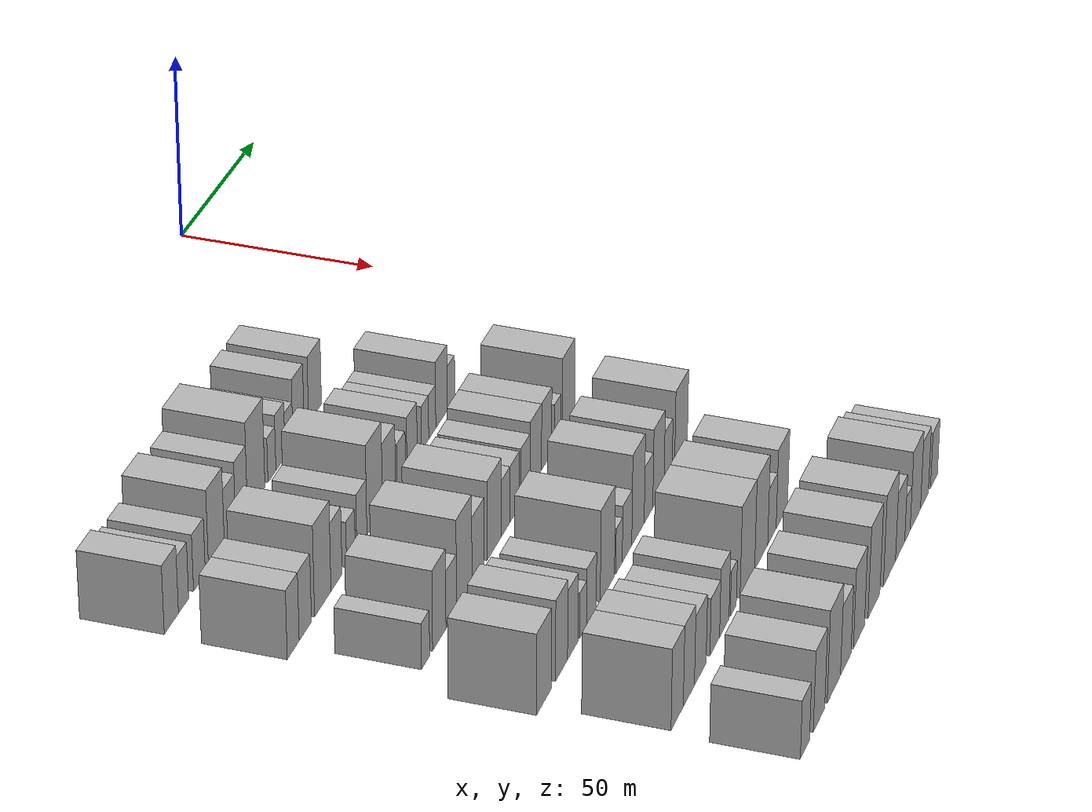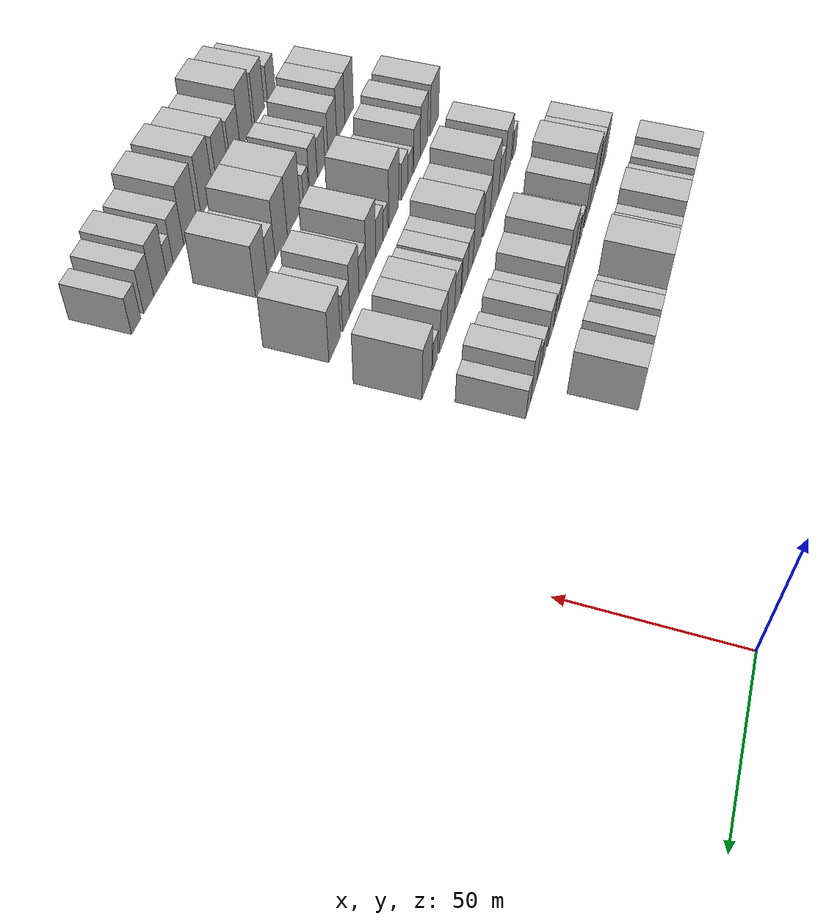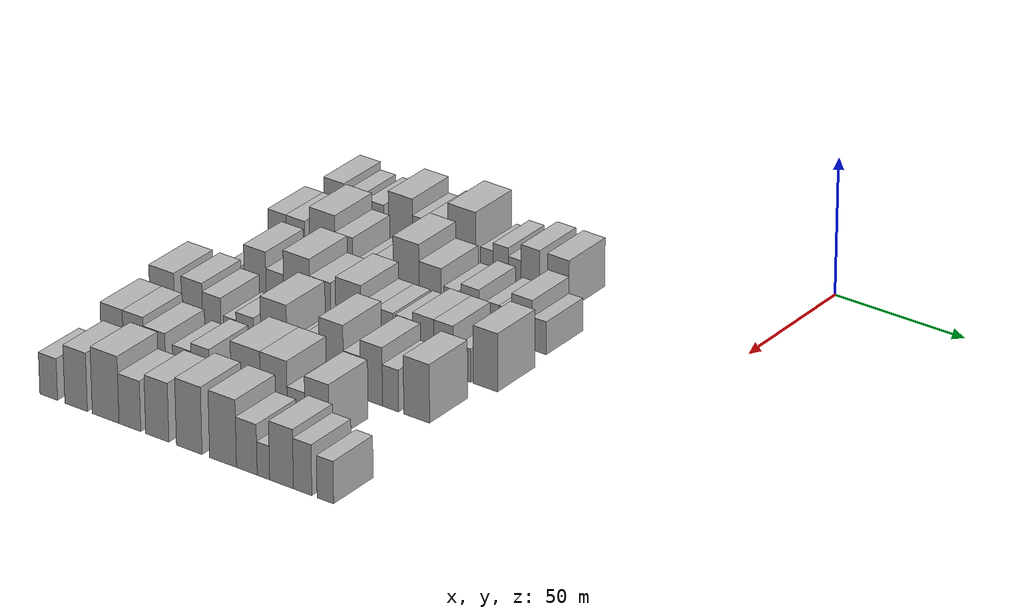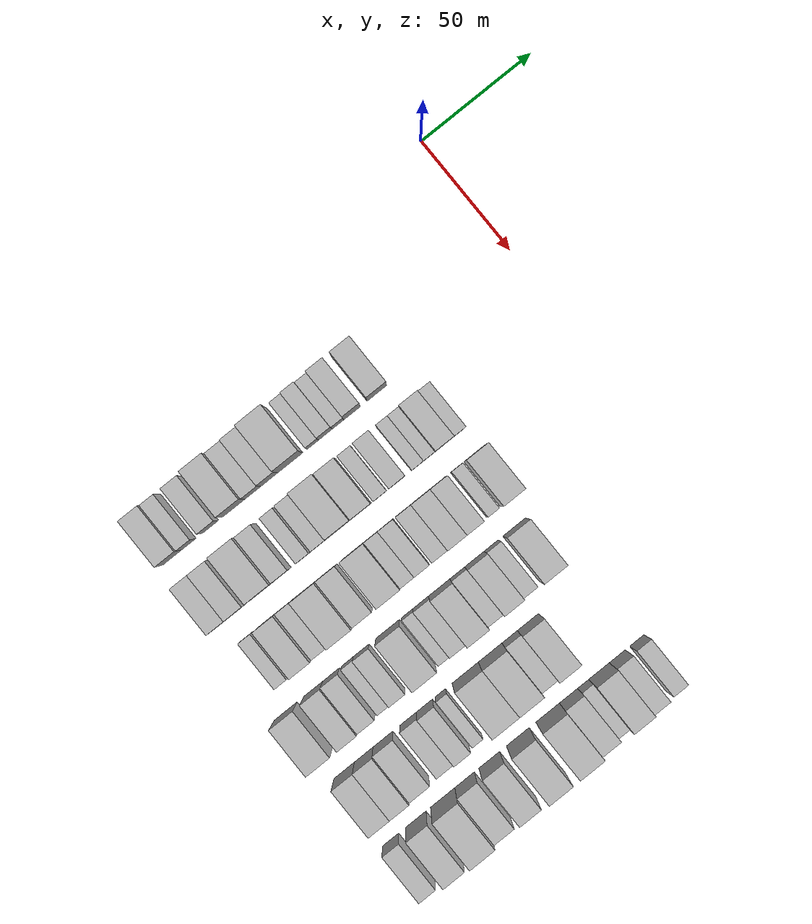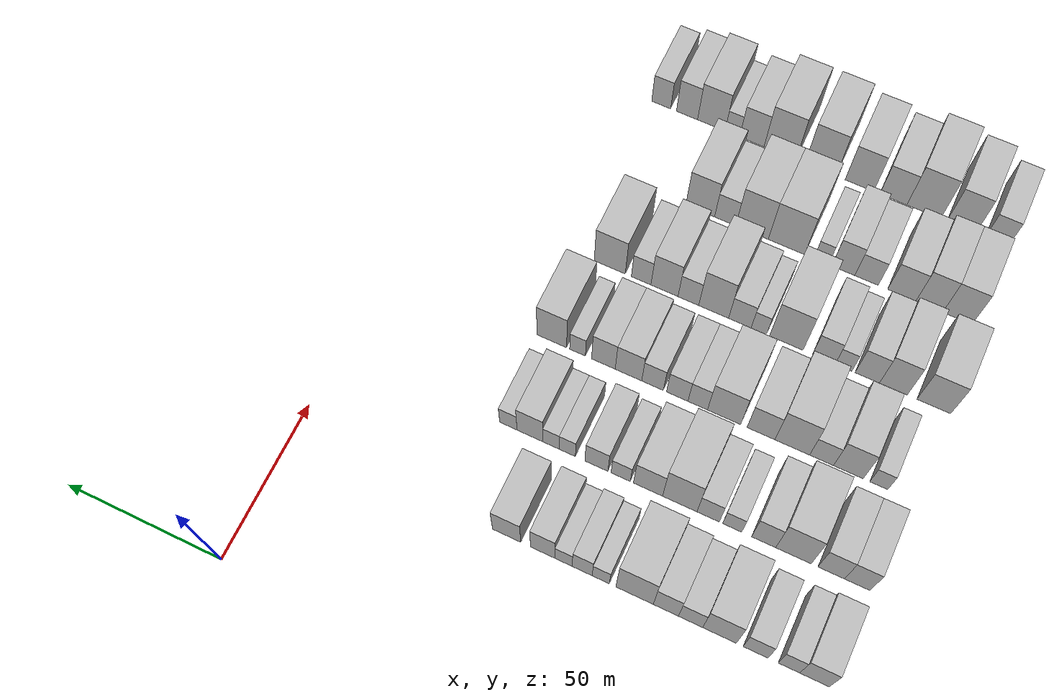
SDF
<sdf version="1.6">
 <world name="default">
  <model name="building_35">
   <static>1</static>
   <pose>50.0000 -160.4625 0 0.000000 0.000000 0.000000</pose>
   <link name="link">
    <pose>0 0 9.00 0 0 0</pose>
    <collision name="collision"><geometry><box><size>20.0000 8.5363 18.0000</size></box></geometry></collision>
    <visual name="visual">
     <cast_shadows>0</cast_shadows>
     <geometry><box><size>20.0000 8.5363 18.0000</size></box></geometry>
     <material>
      <script>
       <uri>model://HANNAS_wall/materials/scripts</uri>
       <uri>model://HANNAS_wall/materials/textures</uri>
       <name>vrc/HANNAS_wall</name>
      </script>
     </material>
    </visual>
   </link>
  </model>
  <model name="building_36">
   <static>1</static>
   <pose>50.0000 -153.0958 0 0.000000 0.000000 0.000000</pose>
   <link name="link">
    <pose>0 0 7.50 0 0 0</pose>
    <collision name="collision"><geometry><box><size>20.0000 6.1970 15.0000</size></box></geometry></collision>
    <visual name="visual">
     <cast_shadows>0</cast_shadows>
     <geometry><box><size>20.0000 6.1970 15.0000</size></box></geometry>
     <material>
      <script>
       <uri>model://HANNAS_wall/materials/scripts</uri>
       <uri>model://HANNAS_wall/materials/textures</uri>
       <name>vrc/HANNAS_wall</name>
      </script>
     </material>
    </visual>
   </link>
  </model>
  <model name="building_37">
   <static>1</static>
   <pose>50.0000 -143.3775 0 0.000000 0.000000 0.000000</pose>
   <link name="link">
    <pose>0 0 7.50 0 0 0</pose>
    <collision name="collision"><geometry><box><size>20.0000 7.2395 15.0000</size></box></geometry></collision>
    <visual name="visual">
     <cast_shadows>0</cast_shadows>
     <geometry><box><size>20.0000 7.2395 15.0000</size></box></geometry>
     <material>
      <script>
       <uri>model://HANNAS_wall/materials/scripts</uri>
       <uri>model://HANNAS_wall/materials/textures</uri>
       <name>vrc/HANNAS_wall</name>
      </script>
     </material>
    </visual>
   </link>
  </model>
  <model name="building_38">
   <static>1</static>
   <pose>50.0000 -132.7980 0 0.000000 0.000000 0.000000</pose>
   <link name="link">
    <pose>0 0 10.50 0 0 0</pose>
    <collision name="collision"><geometry><box><size>20.0000 9.9195 21.0000</size></box></geometry></collision>
    <visual name="visual">
     <cast_shadows>0</cast_shadows>
     <geometry><box><size>20.0000 9.9195 21.0000</size></box></geometry>
     <material>
      <script>
       <uri>model://HANNAS_wall/materials/scripts</uri>
       <uri>model://HANNAS_wall/materials/textures</uri>
       <name>vrc/HANNAS_wall</name>
      </script>
     </material>
    </visual>
   </link>
  </model>
  <model name="building_39">
   <static>1</static>
   <pose>50.0000 -124.2469 0 0.000000 0.000000 0.000000</pose>
   <link name="link">
    <pose>0 0 7.50 0 0 0</pose>
    <collision name="collision"><geometry><box><size>20.0000 7.1827 15.0000</size></box></geometry></collision>
    <visual name="visual">
     <cast_shadows>0</cast_shadows>
     <geometry><box><size>20.0000 7.1827 15.0000</size></box></geometry>
     <material>
      <script>
       <uri>model://HANNAS_wall/materials/scripts</uri>
       <uri>model://HANNAS_wall/materials/textures</uri>
       <name>vrc/HANNAS_wall</name>
      </script>
     </material>
    </visual>
   </link>
  </model>
  <model name="building_40">
   <static>1</static>
   <pose>50.0000 -116.9001 0 0.000000 0.000000 0.000000</pose>
   <link name="link">
    <pose>0 0 9.00 0 0 0</pose>
    <collision name="collision"><geometry><box><size>20.0000 7.5109 18.0000</size></box></geometry></collision>
    <visual name="visual">
     <cast_shadows>0</cast_shadows>
     <geometry><box><size>20.0000 7.5109 18.0000</size></box></geometry>
     <material>
      <script>
       <uri>model://HANNAS_wall/materials/scripts</uri>
       <uri>model://HANNAS_wall/materials/textures</uri>
       <name>vrc/HANNAS_wall</name>
      </script>
     </material>
    </visual>
   </link>
  </model>
  <model name="building_41">
   <static>1</static>
   <pose>50.0000 -107.5109 0 0.000000 0.000000 0.000000</pose>
   <link name="link">
    <pose>0 0 12.00 0 0 0</pose>
    <collision name="collision"><geometry><box><size>20.0000 11.2675 24.0000</size></box></geometry></collision>
    <visual name="visual">
     <cast_shadows>0</cast_shadows>
     <geometry><box><size>20.0000 11.2675 24.0000</size></box></geometry>
     <material>
      <script>
       <uri>model://HANNAS_wall/materials/scripts</uri>
       <uri>model://HANNAS_wall/materials/textures</uri>
       <name>vrc/HANNAS_wall</name>
      </script>
     </material>
    </visual>
   </link>
  </model>
  <model name="building_42">
   <static>1</static>
   <pose>50.0000 -97.2788 0 0.000000 0.000000 0.000000</pose>
   <link name="link">
    <pose>0 0 6.00 0 0 0</pose>
    <collision name="collision"><geometry><box><size>20.0000 5.1967 12.0000</size></box></geometry></collision>
    <visual name="visual">
     <cast_shadows>0</cast_shadows>
     <geometry><box><size>20.0000 5.1967 12.0000</size></box></geometry>
     <material>
      <script>
       <uri>model://HANNAS_wall/materials/scripts</uri>
       <uri>model://HANNAS_wall/materials/textures</uri>
       <name>vrc/HANNAS_wall</name>
      </script>
     </material>
    </visual>
   </link>
  </model>
  <model name="building_43">
   <static>1</static>
   <pose>50.0000 -91.6397 0 0.000000 0.000000 0.000000</pose>
   <link name="link">
    <pose>0 0 7.50 0 0 0</pose>
    <collision name="collision"><geometry><box><size>20.0000 6.0814 15.0000</size></box></geometry></collision>
    <visual name="visual">
     <cast_shadows>0</cast_shadows>
     <geometry><box><size>20.0000 6.0814 15.0000</size></box></geometry>
     <material>
      <script>
       <uri>model://HANNAS_wall/materials/scripts</uri>
       <uri>model://HANNAS_wall/materials/textures</uri>
       <name>vrc/HANNAS_wall</name>
      </script>
     </material>
    </visual>
   </link>
  </model>
  <model name="building_44">
   <static>1</static>
   <pose>50.0000 -85.9596 0 0.000000 0.000000 0.000000</pose>
   <link name="link">
    <pose>0 0 6.00 0 0 0</pose>
    <collision name="collision"><geometry><box><size>20.0000 5.2788 12.0000</size></box></geometry></collision>
    <visual name="visual">
     <cast_shadows>0</cast_shadows>
     <geometry><box><size>20.0000 5.2788 12.0000</size></box></geometry>
     <material>
      <script>
       <uri>model://HANNAS_wall/materials/scripts</uri>
       <uri>model://HANNAS_wall/materials/textures</uri>
       <name>vrc/HANNAS_wall</name>
      </script>
     </material>
    </visual>
   </link>
  </model>
  <model name="building_45">
   <static>1</static>
   <pose>50.0000 -79.5719 0 0.000000 0.000000 0.000000</pose>
   <link name="link">
    <pose>0 0 9.00 0 0 0</pose>
    <collision name="collision"><geometry><box><size>20.0000 7.4966 18.0000</size></box></geometry></collision>
    <visual name="visual">
     <cast_shadows>0</cast_shadows>
     <geometry><box><size>20.0000 7.4966 18.0000</size></box></geometry>
     <material>
      <script>
       <uri>model://HANNAS_wall/materials/scripts</uri>
       <uri>model://HANNAS_wall/materials/textures</uri>
       <name>vrc/HANNAS_wall</name>
      </script>
     </material>
    </visual>
   </link>
  </model>
  <model name="building_46">
   <static>1</static>
   <pose>50.0000 -68.4363 0 0.000000 0.000000 0.000000</pose>
   <link name="link">
    <pose>0 0 9.00 0 0 0</pose>
    <collision name="collision"><geometry><box><size>20.0000 8.7746 18.0000</size></box></geometry></collision>
    <visual name="visual">
     <cast_shadows>0</cast_shadows>
     <geometry><box><size>20.0000 8.7746 18.0000</size></box></geometry>
     <material>
      <script>
       <uri>model://HANNAS_wall/materials/scripts</uri>
       <uri>model://HANNAS_wall/materials/textures</uri>
       <name>vrc/HANNAS_wall</name>
      </script>
     </material>
    </visual>
   </link>
  </model>
  <model name="building_144">
   <static>1</static>
   <pose>79.0000 -161.6944 0 0.000000 0.000000 0.000000</pose>
   <link name="link">
    <pose>0 0 9.00 0 0 0</pose>
    <collision name="collision"><geometry><box><size>20.0000 7.4790 18.0000</size></box></geometry></collision>
    <visual name="visual">
     <cast_shadows>0</cast_shadows>
     <geometry><box><size>20.0000 7.4790 18.0000</size></box></geometry>
     <material>
      <script>
       <uri>model://HANNAS_wall/materials/scripts</uri>
       <uri>model://HANNAS_wall/materials/textures</uri>
       <name>vrc/HANNAS_wall</name>
      </script>
     </material>
    </visual>
   </link>
  </model>
  <model name="building_145">
   <static>1</static>
   <pose>79.0000 -154.0443 0 0.000000 0.000000 0.000000</pose>
   <link name="link">
    <pose>0 0 9.00 0 0 0</pose>
    <collision name="collision"><geometry><box><size>20.0000 7.8212 18.0000</size></box></geometry></collision>
    <visual name="visual">
     <cast_shadows>0</cast_shadows>
     <geometry><box><size>20.0000 7.8212 18.0000</size></box></geometry>
     <material>
      <script>
       <uri>model://HANNAS_wall/materials/scripts</uri>
       <uri>model://HANNAS_wall/materials/textures</uri>
       <name>vrc/HANNAS_wall</name>
      </script>
     </material>
    </visual>
   </link>
  </model>
  <model name="building_146">
   <static>1</static>
   <pose>79.0000 -142.8306 0 0.000000 0.000000 0.000000</pose>
   <link name="link">
    <pose>0 0 12.00 0 0 0</pose>
    <collision name="collision"><geometry><box><size>20.0000 10.6063 24.0000</size></box></geometry></collision>
    <visual name="visual">
     <cast_shadows>0</cast_shadows>
     <geometry><box><size>20.0000 10.6063 24.0000</size></box></geometry>
     <material>
      <script>
       <uri>model://HANNAS_wall/materials/scripts</uri>
       <uri>model://HANNAS_wall/materials/textures</uri>
       <name>vrc/HANNAS_wall</name>
      </script>
     </material>
    </visual>
   </link>
  </model>
  <model name="building_147">
   <static>1</static>
   <pose>79.0000 -133.9106 0 0.000000 0.000000 0.000000</pose>
   <link name="link">
    <pose>0 0 9.00 0 0 0</pose>
    <collision name="collision"><geometry><box><size>20.0000 7.2336 18.0000</size></box></geometry></collision>
    <visual name="visual">
     <cast_shadows>0</cast_shadows>
     <geometry><box><size>20.0000 7.2336 18.0000</size></box></geometry>
     <material>
      <script>
       <uri>model://HANNAS_wall/materials/scripts</uri>
       <uri>model://HANNAS_wall/materials/textures</uri>
       <name>vrc/HANNAS_wall</name>
      </script>
     </material>
    </visual>
   </link>
  </model>
  <model name="building_148">
   <static>1</static>
   <pose>79.0000 -124.4067 0 0.000000 0.000000 0.000000</pose>
   <link name="link">
    <pose>0 0 6.00 0 0 0</pose>
    <collision name="collision"><geometry><box><size>20.0000 5.7742 12.0000</size></box></geometry></collision>
    <visual name="visual">
     <cast_shadows>0</cast_shadows>
     <geometry><box><size>20.0000 5.7742 12.0000</size></box></geometry>
     <material>
      <script>
       <uri>model://HANNAS_wall/materials/scripts</uri>
       <uri>model://HANNAS_wall/materials/textures</uri>
       <name>vrc/HANNAS_wall</name>
      </script>
     </material>
    </visual>
   </link>
  </model>
  <model name="building_149">
   <static>1</static>
   <pose>79.0000 -117.1202 0 0.000000 0.000000 0.000000</pose>
   <link name="link">
    <pose>0 0 7.50 0 0 0</pose>
    <collision name="collision"><geometry><box><size>20.0000 6.7987 15.0000</size></box></geometry></collision>
    <visual name="visual">
     <cast_shadows>0</cast_shadows>
     <geometry><box><size>20.0000 6.7987 15.0000</size></box></geometry>
     <material>
      <script>
       <uri>model://HANNAS_wall/materials/scripts</uri>
       <uri>model://HANNAS_wall/materials/textures</uri>
       <name>vrc/HANNAS_wall</name>
      </script>
     </material>
    </visual>
   </link>
  </model>
  <model name="building_150">
   <static>1</static>
   <pose>79.0000 -108.4394 0 0.000000 0.000000 0.000000</pose>
   <link name="link">
    <pose>0 0 12.00 0 0 0</pose>
    <collision name="collision"><geometry><box><size>20.0000 10.5630 24.0000</size></box></geometry></collision>
    <visual name="visual">
     <cast_shadows>0</cast_shadows>
     <geometry><box><size>20.0000 10.5630 24.0000</size></box></geometry>
     <material>
      <script>
       <uri>model://HANNAS_wall/materials/scripts</uri>
       <uri>model://HANNAS_wall/materials/textures</uri>
       <name>vrc/HANNAS_wall</name>
      </script>
     </material>
    </visual>
   </link>
  </model>
  <model name="building_151">
   <static>1</static>
   <pose>79.0000 -98.6583 0 0.000000 0.000000 0.000000</pose>
   <link name="link">
    <pose>0 0 9.00 0 0 0</pose>
    <collision name="collision"><geometry><box><size>20.0000 8.9992 18.0000</size></box></geometry></collision>
    <visual name="visual">
     <cast_shadows>0</cast_shadows>
     <geometry><box><size>20.0000 8.9992 18.0000</size></box></geometry>
     <material>
      <script>
       <uri>model://HANNAS_wall/materials/scripts</uri>
       <uri>model://HANNAS_wall/materials/textures</uri>
       <name>vrc/HANNAS_wall</name>
      </script>
     </material>
    </visual>
   </link>
  </model>
  <model name="building_152">
   <static>1</static>
   <pose>79.0000 -90.1829 0 0.000000 0.000000 0.000000</pose>
   <link name="link">
    <pose>0 0 6.00 0 0 0</pose>
    <collision name="collision"><geometry><box><size>20.0000 5.9516 12.0000</size></box></geometry></collision>
    <visual name="visual">
     <cast_shadows>0</cast_shadows>
     <geometry><box><size>20.0000 5.9516 12.0000</size></box></geometry>
     <material>
      <script>
       <uri>model://HANNAS_wall/materials/scripts</uri>
       <uri>model://HANNAS_wall/materials/textures</uri>
       <name>vrc/HANNAS_wall</name>
      </script>
     </material>
    </visual>
   </link>
  </model>
  <model name="building_153">
   <static>1</static>
   <pose>79.0000 -82.6163 0 0.000000 0.000000 0.000000</pose>
   <link name="link">
    <pose>0 0 7.50 0 0 0</pose>
    <collision name="collision"><geometry><box><size>20.0000 7.1815 15.0000</size></box></geometry></collision>
    <visual name="visual">
     <cast_shadows>0</cast_shadows>
     <geometry><box><size>20.0000 7.1815 15.0000</size></box></geometry>
     <material>
      <script>
       <uri>model://HANNAS_wall/materials/scripts</uri>
       <uri>model://HANNAS_wall/materials/textures</uri>
       <name>vrc/HANNAS_wall</name>
      </script>
     </material>
    </visual>
   </link>
  </model>
  <model name="building_154">
   <static>1</static>
   <pose>79.0000 -73.4507 0 0.000000 0.000000 0.000000</pose>
   <link name="link">
    <pose>0 0 6.00 0 0 0</pose>
    <collision name="collision"><geometry><box><size>20.0000 5.1498 12.0000</size></box></geometry></collision>
    <visual name="visual">
     <cast_shadows>0</cast_shadows>
     <geometry><box><size>20.0000 5.1498 12.0000</size></box></geometry>
     <material>
      <script>
       <uri>model://HANNAS_wall/materials/scripts</uri>
       <uri>model://HANNAS_wall/materials/textures</uri>
       <name>vrc/HANNAS_wall</name>
      </script>
     </material>
    </visual>
   </link>
  </model>
  <model name="building_155">
   <static>1</static>
   <pose>79.0000 -68.3393 0 0.000000 0.000000 0.000000</pose>
   <link name="link">
    <pose>0 0 6.00 0 0 0</pose>
    <collision name="collision"><geometry><box><size>20.0000 5.0730 12.0000</size></box></geometry></collision>
    <visual name="visual">
     <cast_shadows>0</cast_shadows>
     <geometry><box><size>20.0000 5.0730 12.0000</size></box></geometry>
     <material>
      <script>
       <uri>model://HANNAS_wall/materials/scripts</uri>
       <uri>model://HANNAS_wall/materials/textures</uri>
       <name>vrc/HANNAS_wall</name>
      </script>
     </material>
    </visual>
   </link>
  </model>
  <model name="building_156">
   <static>1</static>
   <pose>79.0000 -61.6820 0 0.000000 0.000000 0.000000</pose>
   <link name="link">
    <pose>0 0 9.00 0 0 0</pose>
    <collision name="collision"><geometry><box><size>20.0000 8.2416 18.0000</size></box></geometry></collision>
    <visual name="visual">
     <cast_shadows>0</cast_shadows>
     <geometry><box><size>20.0000 8.2416 18.0000</size></box></geometry>
     <material>
      <script>
       <uri>model://HANNAS_wall/materials/scripts</uri>
       <uri>model://HANNAS_wall/materials/textures</uri>
       <name>vrc/HANNAS_wall</name>
      </script>
     </material>
    </visual>
   </link>
  </model>
  <model name="building_157">
   <static>1</static>
   <pose>79.0000 -54.7967 0 0.000000 0.000000 0.000000</pose>
   <link name="link">
    <pose>0 0 6.00 0 0 0</pose>
    <collision name="collision"><geometry><box><size>20.0000 5.5290 12.0000</size></box></geometry></collision>
    <visual name="visual">
     <cast_shadows>0</cast_shadows>
     <geometry><box><size>20.0000 5.5290 12.0000</size></box></geometry>
     <material>
      <script>
       <uri>model://HANNAS_wall/materials/scripts</uri>
       <uri>model://HANNAS_wall/materials/textures</uri>
       <name>vrc/HANNAS_wall</name>
      </script>
     </material>
    </visual>
   </link>
  </model>
  <model name="building_261">
   <static>1</static>
   <pose>108.0000 -157.2007 0 0.000000 0.000000 0.000000</pose>
   <link name="link">
    <pose>0 0 6.00 0 0 0</pose>
    <collision name="collision"><geometry><box><size>20.0000 5.4106 12.0000</size></box></geometry></collision>
    <visual name="visual">
     <cast_shadows>0</cast_shadows>
     <geometry><box><size>20.0000 5.4106 12.0000</size></box></geometry>
     <material>
      <script>
       <uri>model://HANNAS_wall/materials/scripts</uri>
       <uri>model://HANNAS_wall/materials/textures</uri>
       <name>vrc/HANNAS_wall</name>
      </script>
     </material>
    </visual>
   </link>
  </model>
  <model name="building_262">
   <static>1</static>
   <pose>108.0000 -147.9935 0 0.000000 0.000000 0.000000</pose>
   <link name="link">
    <pose>0 0 10.50 0 0 0</pose>
    <collision name="collision"><geometry><box><size>20.0000 9.0037 21.0000</size></box></geometry></collision>
    <visual name="visual">
     <cast_shadows>0</cast_shadows>
     <geometry><box><size>20.0000 9.0037 21.0000</size></box></geometry>
     <material>
      <script>
       <uri>model://HANNAS_wall/materials/scripts</uri>
       <uri>model://HANNAS_wall/materials/textures</uri>
       <name>vrc/HANNAS_wall</name>
      </script>
     </material>
    </visual>
   </link>
  </model>
  <model name="building_263">
   <static>1</static>
   <pose>108.0000 -139.8550 0 0.000000 0.000000 0.000000</pose>
   <link name="link">
    <pose>0 0 7.50 0 0 0</pose>
    <collision name="collision"><geometry><box><size>20.0000 7.2733 15.0000</size></box></geometry></collision>
    <visual name="visual">
     <cast_shadows>0</cast_shadows>
     <geometry><box><size>20.0000 7.2733 15.0000</size></box></geometry>
     <material>
      <script>
       <uri>model://HANNAS_wall/materials/scripts</uri>
       <uri>model://HANNAS_wall/materials/textures</uri>
       <name>vrc/HANNAS_wall</name>
      </script>
     </material>
    </visual>
   </link>
  </model>
  <model name="building_264">
   <static>1</static>
   <pose>108.0000 -130.8741 0 0.000000 0.000000 0.000000</pose>
   <link name="link">
    <pose>0 0 12.00 0 0 0</pose>
    <collision name="collision"><geometry><box><size>20.0000 10.6886 24.0000</size></box></geometry></collision>
    <visual name="visual">
     <cast_shadows>0</cast_shadows>
     <geometry><box><size>20.0000 10.6886 24.0000</size></box></geometry>
     <material>
      <script>
       <uri>model://HANNAS_wall/materials/scripts</uri>
       <uri>model://HANNAS_wall/materials/textures</uri>
       <name>vrc/HANNAS_wall</name>
      </script>
     </material>
    </visual>
   </link>
  </model>
  <model name="building_265">
   <static>1</static>
   <pose>108.0000 -121.2299 0 0.000000 0.000000 0.000000</pose>
   <link name="link">
    <pose>0 0 9.00 0 0 0</pose>
    <collision name="collision"><geometry><box><size>20.0000 8.5997 18.0000</size></box></geometry></collision>
    <visual name="visual">
     <cast_shadows>0</cast_shadows>
     <geometry><box><size>20.0000 8.5997 18.0000</size></box></geometry>
     <material>
      <script>
       <uri>model://HANNAS_wall/materials/scripts</uri>
       <uri>model://HANNAS_wall/materials/textures</uri>
       <name>vrc/HANNAS_wall</name>
      </script>
     </material>
    </visual>
   </link>
  </model>
  <model name="building_266">
   <static>1</static>
   <pose>108.0000 -109.7568 0 0.000000 0.000000 0.000000</pose>
   <link name="link">
    <pose>0 0 10.50 0 0 0</pose>
    <collision name="collision"><geometry><box><size>20.0000 10.3466 21.0000</size></box></geometry></collision>
    <visual name="visual">
     <cast_shadows>0</cast_shadows>
     <geometry><box><size>20.0000 10.3466 21.0000</size></box></geometry>
     <material>
      <script>
       <uri>model://HANNAS_wall/materials/scripts</uri>
       <uri>model://HANNAS_wall/materials/textures</uri>
       <name>vrc/HANNAS_wall</name>
      </script>
     </material>
    </visual>
   </link>
  </model>
  <model name="building_267">
   <static>1</static>
   <pose>108.0000 -101.5109 0 0.000000 0.000000 0.000000</pose>
   <link name="link">
    <pose>0 0 7.50 0 0 0</pose>
    <collision name="collision"><geometry><box><size>20.0000 6.1451 15.0000</size></box></geometry></collision>
    <visual name="visual">
     <cast_shadows>0</cast_shadows>
     <geometry><box><size>20.0000 6.1451 15.0000</size></box></geometry>
     <material>
      <script>
       <uri>model://HANNAS_wall/materials/scripts</uri>
       <uri>model://HANNAS_wall/materials/textures</uri>
       <name>vrc/HANNAS_wall</name>
      </script>
     </material>
    </visual>
   </link>
  </model>
  <model name="building_268">
   <static>1</static>
   <pose>108.0000 -95.0472 0 0.000000 0.000000 0.000000</pose>
   <link name="link">
    <pose>0 0 7.50 0 0 0</pose>
    <collision name="collision"><geometry><box><size>20.0000 6.7824 15.0000</size></box></geometry></collision>
    <visual name="visual">
     <cast_shadows>0</cast_shadows>
     <geometry><box><size>20.0000 6.7824 15.0000</size></box></geometry>
     <material>
      <script>
       <uri>model://HANNAS_wall/materials/scripts</uri>
       <uri>model://HANNAS_wall/materials/textures</uri>
       <name>vrc/HANNAS_wall</name>
      </script>
     </material>
    </visual>
   </link>
  </model>
  <model name="building_269">
   <static>1</static>
   <pose>108.0000 -87.2286 0 0.000000 0.000000 0.000000</pose>
   <link name="link">
    <pose>0 0 7.50 0 0 0</pose>
    <collision name="collision"><geometry><box><size>20.0000 6.8547 15.0000</size></box></geometry></collision>
    <visual name="visual">
     <cast_shadows>0</cast_shadows>
     <geometry><box><size>20.0000 6.8547 15.0000</size></box></geometry>
     <material>
      <script>
       <uri>model://HANNAS_wall/materials/scripts</uri>
       <uri>model://HANNAS_wall/materials/textures</uri>
       <name>vrc/HANNAS_wall</name>
      </script>
     </material>
    </visual>
   </link>
  </model>
  <model name="building_270">
   <static>1</static>
   <pose>108.0000 -79.5665 0 0.000000 0.000000 0.000000</pose>
   <link name="link">
    <pose>0 0 9.00 0 0 0</pose>
    <collision name="collision"><geometry><box><size>20.0000 8.4695 18.0000</size></box></geometry></collision>
    <visual name="visual">
     <cast_shadows>0</cast_shadows>
     <geometry><box><size>20.0000 8.4695 18.0000</size></box></geometry>
     <material>
      <script>
       <uri>model://HANNAS_wall/materials/scripts</uri>
       <uri>model://HANNAS_wall/materials/textures</uri>
       <name>vrc/HANNAS_wall</name>
      </script>
     </material>
    </visual>
   </link>
  </model>
  <model name="building_271">
   <static>1</static>
   <pose>108.0000 -71.5337 0 0.000000 0.000000 0.000000</pose>
   <link name="link">
    <pose>0 0 9.00 0 0 0</pose>
    <collision name="collision"><geometry><box><size>20.0000 7.5962 18.0000</size></box></geometry></collision>
    <visual name="visual">
     <cast_shadows>0</cast_shadows>
     <geometry><box><size>20.0000 7.5962 18.0000</size></box></geometry>
     <material>
      <script>
       <uri>model://HANNAS_wall/materials/scripts</uri>
       <uri>model://HANNAS_wall/materials/textures</uri>
       <name>vrc/HANNAS_wall</name>
      </script>
     </material>
    </visual>
   </link>
  </model>
  <model name="building_272">
   <static>1</static>
   <pose>108.0000 -63.1961 0 0.000000 0.000000 0.000000</pose>
   <link name="link">
    <pose>0 0 6.00 0 0 0</pose>
    <collision name="collision"><geometry><box><size>20.0000 5.0791 12.0000</size></box></geometry></collision>
    <visual name="visual">
     <cast_shadows>0</cast_shadows>
     <geometry><box><size>20.0000 5.0791 12.0000</size></box></geometry>
     <material>
      <script>
       <uri>model://HANNAS_wall/materials/scripts</uri>
       <uri>model://HANNAS_wall/materials/textures</uri>
       <name>vrc/HANNAS_wall</name>
      </script>
     </material>
    </visual>
   </link>
  </model>
  <model name="building_273">
   <static>1</static>
   <pose>108.0000 -54.8494 0 0.000000 0.000000 0.000000</pose>
   <link name="link">
    <pose>0 0 10.50 0 0 0</pose>
    <collision name="collision"><geometry><box><size>20.0000 9.6143 21.0000</size></box></geometry></collision>
    <visual name="visual">
     <cast_shadows>0</cast_shadows>
     <geometry><box><size>20.0000 9.6143 21.0000</size></box></geometry>
     <material>
      <script>
       <uri>model://HANNAS_wall/materials/scripts</uri>
       <uri>model://HANNAS_wall/materials/textures</uri>
       <name>vrc/HANNAS_wall</name>
      </script>
     </material>
    </visual>
   </link>
  </model>
  <model name="building_372">
   <static>1</static>
   <pose>137.0000 -163.2985 0 0.000000 0.000000 0.000000</pose>
   <link name="link">
    <pose>0 0 10.50 0 0 0</pose>
    <collision name="collision"><geometry><box><size>20.0000 10.3013 21.0000</size></box></geometry></collision>
    <visual name="visual">
     <cast_shadows>0</cast_shadows>
     <geometry><box><size>20.0000 10.3013 21.0000</size></box></geometry>
     <material>
      <script>
       <uri>model://HANNAS_wall/materials/scripts</uri>
       <uri>model://HANNAS_wall/materials/textures</uri>
       <name>vrc/HANNAS_wall</name>
      </script>
     </material>
    </visual>
   </link>
  </model>
  <model name="building_373">
   <static>1</static>
   <pose>137.0000 -150.8652 0 0.000000 0.000000 0.000000</pose>
   <link name="link">
    <pose>0 0 10.50 0 0 0</pose>
    <collision name="collision"><geometry><box><size>20.0000 8.5653 21.0000</size></box></geometry></collision>
    <visual name="visual">
     <cast_shadows>0</cast_shadows>
     <geometry><box><size>20.0000 8.5653 21.0000</size></box></geometry>
     <material>
      <script>
       <uri>model://HANNAS_wall/materials/scripts</uri>
       <uri>model://HANNAS_wall/materials/textures</uri>
       <name>vrc/HANNAS_wall</name>
      </script>
     </material>
    </visual>
   </link>
  </model>
  <model name="building_374">
   <static>1</static>
   <pose>137.0000 -142.8000 0 0.000000 0.000000 0.000000</pose>
   <link name="link">
    <pose>0 0 9.00 0 0 0</pose>
    <collision name="collision"><geometry><box><size>20.0000 7.5650 18.0000</size></box></geometry></collision>
    <visual name="visual">
     <cast_shadows>0</cast_shadows>
     <geometry><box><size>20.0000 7.5650 18.0000</size></box></geometry>
     <material>
      <script>
       <uri>model://HANNAS_wall/materials/scripts</uri>
       <uri>model://HANNAS_wall/materials/textures</uri>
       <name>vrc/HANNAS_wall</name>
      </script>
     </material>
    </visual>
   </link>
  </model>
  <model name="building_375">
   <static>1</static>
   <pose>137.0000 -135.4252 0 0.000000 0.000000 0.000000</pose>
   <link name="link">
    <pose>0 0 6.00 0 0 0</pose>
    <collision name="collision"><geometry><box><size>20.0000 5.1846 12.0000</size></box></geometry></collision>
    <visual name="visual">
     <cast_shadows>0</cast_shadows>
     <geometry><box><size>20.0000 5.1846 12.0000</size></box></geometry>
     <material>
      <script>
       <uri>model://HANNAS_wall/materials/scripts</uri>
       <uri>model://HANNAS_wall/materials/textures</uri>
       <name>vrc/HANNAS_wall</name>
      </script>
     </material>
    </visual>
   </link>
  </model>
  <model name="building_376">
   <static>1</static>
   <pose>137.0000 -129.2795 0 0.000000 0.000000 0.000000</pose>
   <link name="link">
    <pose>0 0 7.50 0 0 0</pose>
    <collision name="collision"><geometry><box><size>20.0000 7.1068 15.0000</size></box></geometry></collision>
    <visual name="visual">
     <cast_shadows>0</cast_shadows>
     <geometry><box><size>20.0000 7.1068 15.0000</size></box></geometry>
     <material>
      <script>
       <uri>model://HANNAS_wall/materials/scripts</uri>
       <uri>model://HANNAS_wall/materials/textures</uri>
       <name>vrc/HANNAS_wall</name>
      </script>
     </material>
    </visual>
   </link>
  </model>
  <model name="building_377">
   <static>1</static>
   <pose>137.0000 -117.4315 0 0.000000 0.000000 0.000000</pose>
   <link name="link">
    <pose>0 0 12.00 0 0 0</pose>
    <collision name="collision"><geometry><box><size>20.0000 10.5891 24.0000</size></box></geometry></collision>
    <visual name="visual">
     <cast_shadows>0</cast_shadows>
     <geometry><box><size>20.0000 10.5891 24.0000</size></box></geometry>
     <material>
      <script>
       <uri>model://HANNAS_wall/materials/scripts</uri>
       <uri>model://HANNAS_wall/materials/textures</uri>
       <name>vrc/HANNAS_wall</name>
      </script>
     </material>
    </visual>
   </link>
  </model>
  <model name="building_378">
   <static>1</static>
   <pose>137.0000 -108.6912 0 0.000000 0.000000 0.000000</pose>
   <link name="link">
    <pose>0 0 6.00 0 0 0</pose>
    <collision name="collision"><geometry><box><size>20.0000 4.8916 12.0000</size></box></geometry></collision>
    <visual name="visual">
     <cast_shadows>0</cast_shadows>
     <geometry><box><size>20.0000 4.8916 12.0000</size></box></geometry>
     <material>
      <script>
       <uri>model://HANNAS_wall/materials/scripts</uri>
       <uri>model://HANNAS_wall/materials/textures</uri>
       <name>vrc/HANNAS_wall</name>
      </script>
     </material>
    </visual>
   </link>
  </model>
  <model name="building_379">
   <static>1</static>
   <pose>137.0000 -102.6356 0 0.000000 0.000000 0.000000</pose>
   <link name="link">
    <pose>0 0 7.50 0 0 0</pose>
    <collision name="collision"><geometry><box><size>20.0000 7.2196 15.0000</size></box></geometry></collision>
    <visual name="visual">
     <cast_shadows>0</cast_shadows>
     <geometry><box><size>20.0000 7.2196 15.0000</size></box></geometry>
     <material>
      <script>
       <uri>model://HANNAS_wall/materials/scripts</uri>
       <uri>model://HANNAS_wall/materials/textures</uri>
       <name>vrc/HANNAS_wall</name>
      </script>
     </material>
    </visual>
   </link>
  </model>
  <model name="building_380">
   <static>1</static>
   <pose>137.0000 -94.2178 0 0.000000 0.000000 0.000000</pose>
   <link name="link">
    <pose>0 0 12.00 0 0 0</pose>
    <collision name="collision"><geometry><box><size>20.0000 9.6158 24.0000</size></box></geometry></collision>
    <visual name="visual">
     <cast_shadows>0</cast_shadows>
     <geometry><box><size>20.0000 9.6158 24.0000</size></box></geometry>
     <material>
      <script>
       <uri>model://HANNAS_wall/materials/scripts</uri>
       <uri>model://HANNAS_wall/materials/textures</uri>
       <name>vrc/HANNAS_wall</name>
      </script>
     </material>
    </visual>
   </link>
  </model>
  <model name="building_381">
   <static>1</static>
   <pose>137.0000 -86.0596 0 0.000000 0.000000 0.000000</pose>
   <link name="link">
    <pose>0 0 7.50 0 0 0</pose>
    <collision name="collision"><geometry><box><size>20.0000 6.7006 15.0000</size></box></geometry></collision>
    <visual name="visual">
     <cast_shadows>0</cast_shadows>
     <geometry><box><size>20.0000 6.7006 15.0000</size></box></geometry>
     <material>
      <script>
       <uri>model://HANNAS_wall/materials/scripts</uri>
       <uri>model://HANNAS_wall/materials/textures</uri>
       <name>vrc/HANNAS_wall</name>
      </script>
     </material>
    </visual>
   </link>
  </model>
  <model name="building_382">
   <static>1</static>
   <pose>137.0000 -78.2956 0 0.000000 0.000000 0.000000</pose>
   <link name="link">
    <pose>0 0 10.50 0 0 0</pose>
    <collision name="collision"><geometry><box><size>20.0000 8.8276 21.0000</size></box></geometry></collision>
    <visual name="visual">
     <cast_shadows>0</cast_shadows>
     <geometry><box><size>20.0000 8.8276 21.0000</size></box></geometry>
     <material>
      <script>
       <uri>model://HANNAS_wall/materials/scripts</uri>
       <uri>model://HANNAS_wall/materials/textures</uri>
       <name>vrc/HANNAS_wall</name>
      </script>
     </material>
    </visual>
   </link>
  </model>
  <model name="building_383">
   <static>1</static>
   <pose>137.0000 -70.6706 0 0.000000 0.000000 0.000000</pose>
   <link name="link">
    <pose>0 0 7.50 0 0 0</pose>
    <collision name="collision"><geometry><box><size>20.0000 6.4225 15.0000</size></box></geometry></collision>
    <visual name="visual">
     <cast_shadows>0</cast_shadows>
     <geometry><box><size>20.0000 6.4225 15.0000</size></box></geometry>
     <material>
      <script>
       <uri>model://HANNAS_wall/materials/scripts</uri>
       <uri>model://HANNAS_wall/materials/textures</uri>
       <name>vrc/HANNAS_wall</name>
      </script>
     </material>
    </visual>
   </link>
  </model>
  <model name="building_384">
   <static>1</static>
   <pose>137.0000 -60.3482 0 0.000000 0.000000 0.000000</pose>
   <link name="link">
    <pose>0 0 10.50 0 0 0</pose>
    <collision name="collision"><geometry><box><size>20.0000 10.2223 21.0000</size></box></geometry></collision>
    <visual name="visual">
     <cast_shadows>0</cast_shadows>
     <geometry><box><size>20.0000 10.2223 21.0000</size></box></geometry>
     <material>
      <script>
       <uri>model://HANNAS_wall/materials/scripts</uri>
       <uri>model://HANNAS_wall/materials/textures</uri>
       <name>vrc/HANNAS_wall</name>
      </script>
     </material>
    </visual>
   </link>
  </model>
  <model name="building_486">
   <static>1</static>
   <pose>166.0000 -160.2955 0 0.000000 0.000000 0.000000</pose>
   <link name="link">
    <pose>0 0 10.50 0 0 0</pose>
    <collision name="collision"><geometry><box><size>20.0000 9.1404 21.0000</size></box></geometry></collision>
    <visual name="visual">
     <cast_shadows>0</cast_shadows>
     <geometry><box><size>20.0000 9.1404 21.0000</size></box></geometry>
     <material>
      <script>
       <uri>model://HANNAS_wall/materials/scripts</uri>
       <uri>model://HANNAS_wall/materials/textures</uri>
       <name>vrc/HANNAS_wall</name>
      </script>
     </material>
    </visual>
   </link>
  </model>
  <model name="building_487">
   <static>1</static>
   <pose>166.0000 -151.5183 0 0.000000 0.000000 0.000000</pose>
   <link name="link">
    <pose>0 0 10.50 0 0 0</pose>
    <collision name="collision"><geometry><box><size>20.0000 8.4141 21.0000</size></box></geometry></collision>
    <visual name="visual">
     <cast_shadows>0</cast_shadows>
     <geometry><box><size>20.0000 8.4141 21.0000</size></box></geometry>
     <material>
      <script>
       <uri>model://HANNAS_wall/materials/scripts</uri>
       <uri>model://HANNAS_wall/materials/textures</uri>
       <name>vrc/HANNAS_wall</name>
      </script>
     </material>
    </visual>
   </link>
  </model>
  <model name="building_488">
   <static>1</static>
   <pose>166.0000 -142.8494 0 0.000000 0.000000 0.000000</pose>
   <link name="link">
    <pose>0 0 9.00 0 0 0</pose>
    <collision name="collision"><geometry><box><size>20.0000 8.9237 18.0000</size></box></geometry></collision>
    <visual name="visual">
     <cast_shadows>0</cast_shadows>
     <geometry><box><size>20.0000 8.9237 18.0000</size></box></geometry>
     <material>
      <script>
       <uri>model://HANNAS_wall/materials/scripts</uri>
       <uri>model://HANNAS_wall/materials/textures</uri>
       <name>vrc/HANNAS_wall</name>
      </script>
     </material>
    </visual>
   </link>
  </model>
  <model name="building_489">
   <static>1</static>
   <pose>166.0000 -131.6412 0 0.000000 0.000000 0.000000</pose>
   <link name="link">
    <pose>0 0 7.50 0 0 0</pose>
    <collision name="collision"><geometry><box><size>20.0000 7.4926 15.0000</size></box></geometry></collision>
    <visual name="visual">
     <cast_shadows>0</cast_shadows>
     <geometry><box><size>20.0000 7.4926 15.0000</size></box></geometry>
     <material>
      <script>
       <uri>model://HANNAS_wall/materials/scripts</uri>
       <uri>model://HANNAS_wall/materials/textures</uri>
       <name>vrc/HANNAS_wall</name>
      </script>
     </material>
    </visual>
   </link>
  </model>
  <model name="building_490">
   <static>1</static>
   <pose>166.0000 -124.2169 0 0.000000 0.000000 0.000000</pose>
   <link name="link">
    <pose>0 0 9.00 0 0 0</pose>
    <collision name="collision"><geometry><box><size>20.0000 7.3561 18.0000</size></box></geometry></collision>
    <visual name="visual">
     <cast_shadows>0</cast_shadows>
     <geometry><box><size>20.0000 7.3561 18.0000</size></box></geometry>
     <material>
      <script>
       <uri>model://HANNAS_wall/materials/scripts</uri>
       <uri>model://HANNAS_wall/materials/textures</uri>
       <name>vrc/HANNAS_wall</name>
      </script>
     </material>
    </visual>
   </link>
  </model>
  <model name="building_491">
   <static>1</static>
   <pose>166.0000 -117.1373 0 0.000000 0.000000 0.000000</pose>
   <link name="link">
    <pose>0 0 6.00 0 0 0</pose>
    <collision name="collision"><geometry><box><size>20.0000 4.8031 12.0000</size></box></geometry></collision>
    <visual name="visual">
     <cast_shadows>0</cast_shadows>
     <geometry><box><size>20.0000 4.8031 12.0000</size></box></geometry>
     <material>
      <script>
       <uri>model://HANNAS_wall/materials/scripts</uri>
       <uri>model://HANNAS_wall/materials/textures</uri>
       <name>vrc/HANNAS_wall</name>
      </script>
     </material>
    </visual>
   </link>
  </model>
  <model name="building_492">
   <static>1</static>
   <pose>166.0000 -105.8310 0 0.000000 0.000000 0.000000</pose>
   <link name="link">
    <pose>0 0 12.00 0 0 0</pose>
    <collision name="collision"><geometry><box><size>20.0000 11.8095 24.0000</size></box></geometry></collision>
    <visual name="visual">
     <cast_shadows>0</cast_shadows>
     <geometry><box><size>20.0000 11.8095 24.0000</size></box></geometry>
     <material>
      <script>
       <uri>model://HANNAS_wall/materials/scripts</uri>
       <uri>model://HANNAS_wall/materials/textures</uri>
       <name>vrc/HANNAS_wall</name>
      </script>
     </material>
    </visual>
   </link>
  </model>
  <model name="building_493">
   <static>1</static>
   <pose>166.0000 -94.5762 0 0.000000 0.000000 0.000000</pose>
   <link name="link">
    <pose>0 0 12.00 0 0 0</pose>
    <collision name="collision"><geometry><box><size>20.0000 10.7000 24.0000</size></box></geometry></collision>
    <visual name="visual">
     <cast_shadows>0</cast_shadows>
     <geometry><box><size>20.0000 10.7000 24.0000</size></box></geometry>
     <material>
      <script>
       <uri>model://HANNAS_wall/materials/scripts</uri>
       <uri>model://HANNAS_wall/materials/textures</uri>
       <name>vrc/HANNAS_wall</name>
      </script>
     </material>
    </visual>
   </link>
  </model>
  <model name="building_494">
   <static>1</static>
   <pose>166.0000 -85.7419 0 0.000000 0.000000 0.000000</pose>
   <link name="link">
    <pose>0 0 7.50 0 0 0</pose>
    <collision name="collision"><geometry><box><size>20.0000 6.9687 15.0000</size></box></geometry></collision>
    <visual name="visual">
     <cast_shadows>0</cast_shadows>
     <geometry><box><size>20.0000 6.9687 15.0000</size></box></geometry>
     <material>
      <script>
       <uri>model://HANNAS_wall/materials/scripts</uri>
       <uri>model://HANNAS_wall/materials/textures</uri>
       <name>vrc/HANNAS_wall</name>
      </script>
     </material>
    </visual>
   </link>
  </model>
  <model name="building_495">
   <static>1</static>
   <pose>166.0000 -77.4831 0 0.000000 0.000000 0.000000</pose>
   <link name="link">
    <pose>0 0 10.50 0 0 0</pose>
    <collision name="collision"><geometry><box><size>20.0000 9.5487 21.0000</size></box></geometry></collision>
    <visual name="visual">
     <cast_shadows>0</cast_shadows>
     <geometry><box><size>20.0000 9.5487 21.0000</size></box></geometry>
     <material>
      <script>
       <uri>model://HANNAS_wall/materials/scripts</uri>
       <uri>model://HANNAS_wall/materials/textures</uri>
       <name>vrc/HANNAS_wall</name>
      </script>
     </material>
    </visual>
   </link>
  </model>
  <model name="building_592">
   <static>1</static>
   <pose>195.0000 -162.7166 0 0.000000 0.000000 0.000000</pose>
   <link name="link">
    <pose>0 0 7.50 0 0 0</pose>
    <collision name="collision"><geometry><box><size>20.0000 7.2918 15.0000</size></box></geometry></collision>
    <visual name="visual">
     <cast_shadows>0</cast_shadows>
     <geometry><box><size>20.0000 7.2918 15.0000</size></box></geometry>
     <material>
      <script>
       <uri>model://HANNAS_wall/materials/scripts</uri>
       <uri>model://HANNAS_wall/materials/textures</uri>
       <name>vrc/HANNAS_wall</name>
      </script>
     </material>
    </visual>
   </link>
  </model>
  <model name="building_593">
   <static>1</static>
   <pose>195.0000 -151.4394 0 0.000000 0.000000 0.000000</pose>
   <link name="link">
    <pose>0 0 10.50 0 0 0</pose>
    <collision name="collision"><geometry><box><size>20.0000 9.2626 21.0000</size></box></geometry></collision>
    <visual name="visual">
     <cast_shadows>0</cast_shadows>
     <geometry><box><size>20.0000 9.2626 21.0000</size></box></geometry>
     <material>
      <script>
       <uri>model://HANNAS_wall/materials/scripts</uri>
       <uri>model://HANNAS_wall/materials/textures</uri>
       <name>vrc/HANNAS_wall</name>
      </script>
     </material>
    </visual>
   </link>
  </model>
  <model name="building_594">
   <static>1</static>
   <pose>195.0000 -139.3456 0 0.000000 0.000000 0.000000</pose>
   <link name="link">
    <pose>0 0 12.00 0 0 0</pose>
    <collision name="collision"><geometry><box><size>20.0000 10.9251 24.0000</size></box></geometry></collision>
    <visual name="visual">
     <cast_shadows>0</cast_shadows>
     <geometry><box><size>20.0000 10.9251 24.0000</size></box></geometry>
     <material>
      <script>
       <uri>model://HANNAS_wall/materials/scripts</uri>
       <uri>model://HANNAS_wall/materials/textures</uri>
       <name>vrc/HANNAS_wall</name>
      </script>
     </material>
    </visual>
   </link>
  </model>
  <model name="building_595">
   <static>1</static>
   <pose>195.0000 -129.4758 0 0.000000 0.000000 0.000000</pose>
   <link name="link">
    <pose>0 0 9.00 0 0 0</pose>
    <collision name="collision"><geometry><box><size>20.0000 8.8145 18.0000</size></box></geometry></collision>
    <visual name="visual">
     <cast_shadows>0</cast_shadows>
     <geometry><box><size>20.0000 8.8145 18.0000</size></box></geometry>
     <material>
      <script>
       <uri>model://HANNAS_wall/materials/scripts</uri>
       <uri>model://HANNAS_wall/materials/textures</uri>
       <name>vrc/HANNAS_wall</name>
      </script>
     </material>
    </visual>
   </link>
  </model>
  <model name="building_596">
   <static>1</static>
   <pose>195.0000 -118.3777 0 0.000000 0.000000 0.000000</pose>
   <link name="link">
    <pose>0 0 10.50 0 0 0</pose>
    <collision name="collision"><geometry><box><size>20.0000 9.3816 21.0000</size></box></geometry></collision>
    <visual name="visual">
     <cast_shadows>0</cast_shadows>
     <geometry><box><size>20.0000 9.3816 21.0000</size></box></geometry>
     <material>
      <script>
       <uri>model://HANNAS_wall/materials/scripts</uri>
       <uri>model://HANNAS_wall/materials/textures</uri>
       <name>vrc/HANNAS_wall</name>
      </script>
     </material>
    </visual>
   </link>
  </model>
  <model name="building_597">
   <static>1</static>
   <pose>195.0000 -105.5355 0 0.000000 0.000000 0.000000</pose>
   <link name="link">
    <pose>0 0 12.00 0 0 0</pose>
    <collision name="collision"><geometry><box><size>20.0000 10.3029 24.0000</size></box></geometry></collision>
    <visual name="visual">
     <cast_shadows>0</cast_shadows>
     <geometry><box><size>20.0000 10.3029 24.0000</size></box></geometry>
     <material>
      <script>
       <uri>model://HANNAS_wall/materials/scripts</uri>
       <uri>model://HANNAS_wall/materials/textures</uri>
       <name>vrc/HANNAS_wall</name>
      </script>
     </material>
    </visual>
   </link>
  </model>
  <model name="building_598">
   <static>1</static>
   <pose>195.0000 -92.0436 0 0.000000 0.000000 0.000000</pose>
   <link name="link">
    <pose>0 0 12.00 0 0 0</pose>
    <collision name="collision"><geometry><box><size>20.0000 10.6810 24.0000</size></box></geometry></collision>
    <visual name="visual">
     <cast_shadows>0</cast_shadows>
     <geometry><box><size>20.0000 10.6810 24.0000</size></box></geometry>
     <material>
      <script>
       <uri>model://HANNAS_wall/materials/scripts</uri>
       <uri>model://HANNAS_wall/materials/textures</uri>
       <name>vrc/HANNAS_wall</name>
      </script>
     </material>
    </visual>
   </link>
  </model>
  <model name="building_599">
   <static>1</static>
   <pose>195.0000 -82.5993 0 0.000000 0.000000 0.000000</pose>
   <link name="link">
    <pose>0 0 9.00 0 0 0</pose>
    <collision name="collision"><geometry><box><size>20.0000 8.2075 18.0000</size></box></geometry></collision>
    <visual name="visual">
     <cast_shadows>0</cast_shadows>
     <geometry><box><size>20.0000 8.2075 18.0000</size></box></geometry>
     <material>
      <script>
       <uri>model://HANNAS_wall/materials/scripts</uri>
       <uri>model://HANNAS_wall/materials/textures</uri>
       <name>vrc/HANNAS_wall</name>
      </script>
     </material>
    </visual>
   </link>
  </model>
  <model name="building_600">
   <static>1</static>
   <pose>195.0000 -76.0298 0 0.000000 0.000000 0.000000</pose>
   <link name="link">
    <pose>0 0 6.00 0 0 0</pose>
    <collision name="collision"><geometry><box><size>20.0000 4.9314 12.0000</size></box></geometry></collision>
    <visual name="visual">
     <cast_shadows>0</cast_shadows>
     <geometry><box><size>20.0000 4.9314 12.0000</size></box></geometry>
     <material>
      <script>
       <uri>model://HANNAS_wall/materials/scripts</uri>
       <uri>model://HANNAS_wall/materials/textures</uri>
       <name>vrc/HANNAS_wall</name>
      </script>
     </material>
    </visual>
   </link>
  </model>
  <model name="building_601">
   <static>1</static>
   <pose>195.0000 -68.8804 0 0.000000 0.000000 0.000000</pose>
   <link name="link">
    <pose>0 0 10.50 0 0 0</pose>
    <collision name="collision"><geometry><box><size>20.0000 9.3674 21.0000</size></box></geometry></collision>
    <visual name="visual">
     <cast_shadows>0</cast_shadows>
     <geometry><box><size>20.0000 9.3674 21.0000</size></box></geometry>
     <material>
      <script>
       <uri>model://HANNAS_wall/materials/scripts</uri>
       <uri>model://HANNAS_wall/materials/textures</uri>
       <name>vrc/HANNAS_wall</name>
      </script>
     </material>
    </visual>
   </link>
  </model>
  <model name="building_602">
   <static>1</static>
   <pose>195.0000 -60.5914 0 0.000000 0.000000 0.000000</pose>
   <link name="link">
    <pose>0 0 9.00 0 0 0</pose>
    <collision name="collision"><geometry><box><size>20.0000 7.2108 18.0000</size></box></geometry></collision>
    <visual name="visual">
     <cast_shadows>0</cast_shadows>
     <geometry><box><size>20.0000 7.2108 18.0000</size></box></geometry>
     <material>
      <script>
       <uri>model://HANNAS_wall/materials/scripts</uri>
       <uri>model://HANNAS_wall/materials/textures</uri>
       <name>vrc/HANNAS_wall</name>
      </script>
     </material>
    </visual>
   </link>
  </model>
  <model name="building_603">
   <static>1</static>
   <pose>195.0000 -51.7420 0 0.000000 0.000000 0.000000</pose>
   <link name="link">
    <pose>0 0 7.50 0 0 0</pose>
    <collision name="collision"><geometry><box><size>20.0000 6.4879 15.0000</size></box></geometry></collision>
    <visual name="visual">
     <cast_shadows>0</cast_shadows>
     <geometry><box><size>20.0000 6.4879 15.0000</size></box></geometry>
     <material>
      <script>
       <uri>model://HANNAS_wall/materials/scripts</uri>
       <uri>model://HANNAS_wall/materials/textures</uri>
       <name>vrc/HANNAS_wall</name>
      </script>
     </material>
    </visual>
   </link>
  </model>
 </world>
</sdf>
